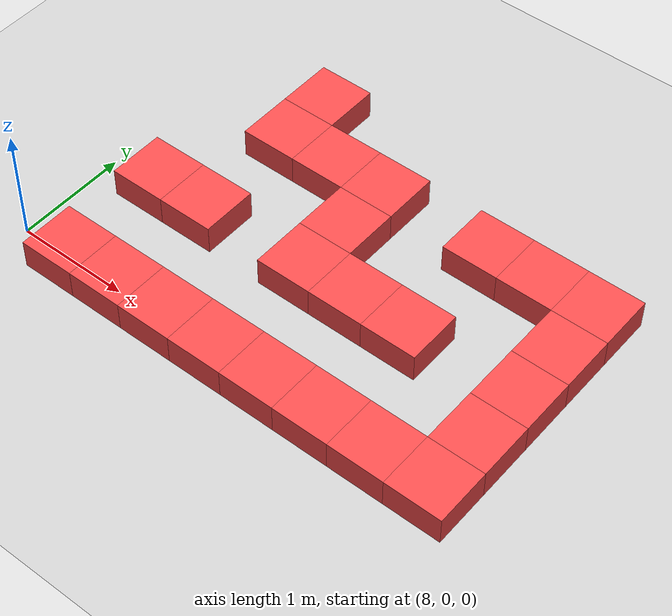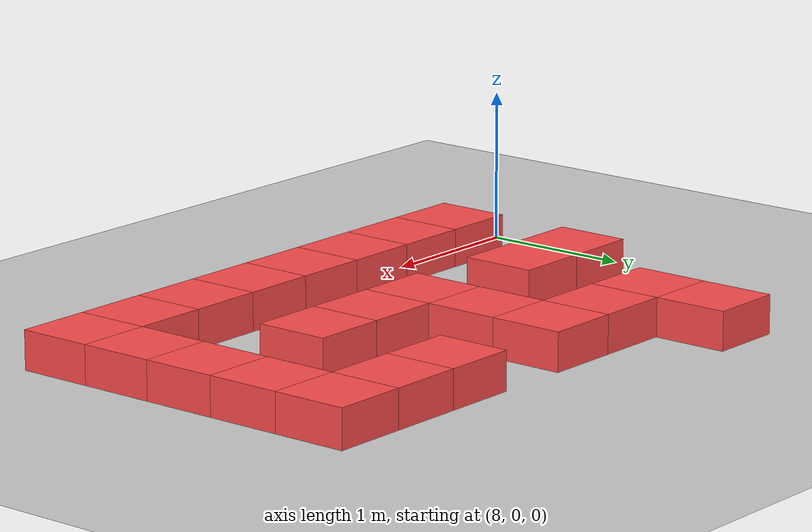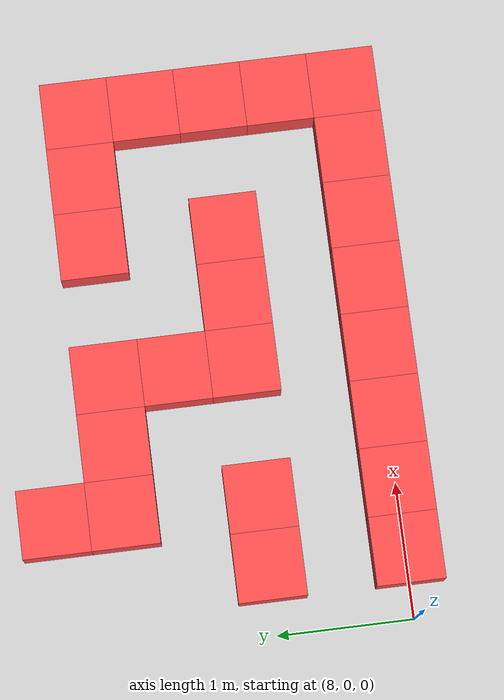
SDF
<sdf version="1.6">
 <world name="default">
  <model name="ground_plane">
   <static>1</static>
   <link name="link">
    <collision name="collision">
     <geometry><plane><normal>0 0 1</normal><size>100 100</size></plane></geometry>
     <surface><friction><ode><mu>100</mu><mu2>50</mu2></ode></friction></surface>
    </collision>
    <visual name="visual">
     <cast_shadows>0</cast_shadows>
     <geometry><plane><normal>0 0 1</normal><size>100 100</size></plane></geometry>
     <material>
      <script><uri>file://media/materials/scripts/gazebo.material</uri><name>Gazebo/Grey</name></script>
     </material>
    </visual>
   </link>
  </model>
  <model name="Box_Red_425">
   <link name="link_0">
    <inertial>
     <mass>1</mass>
     <inertia>
      <ixx>0.166667</ixx>
      <ixy>0</ixy>
      <ixz>0</ixz>
      <iyy>0.166667</iyy>
      <iyz>0</iyz>
      <izz>0.166667</izz>
     </inertia>
    </inertial>
    <visual name="visual">
     <geometry><box><size>0.5 0.5 0.5</size></box></geometry>
     <material>
      <lighting>1</lighting>
      <script><uri>file://media/materials/scripts/gazebo.material</uri><name>Gazebo/Grey</name></script>
      <ambient>1 0.3 0.3 1</ambient>
      <diffuse>0.7 0.7 0.7 1</diffuse>
      <specular>0.01 0.01 0.01 1</specular>
      <emissive>0 0 0 1</emissive>
      <shader type="vertex"><normal_map>__default__</normal_map></shader>
     </material>
    </visual>
    <collision name="collision">
     <geometry><box><size>0.5 0.5 0.5</size></box></geometry>
     <surface>
      <friction>
       <ode><mu>1</mu><mu2>1</mu2><fdir1>0 0 0</fdir1><slip1>0</slip1><slip2>0</slip2></ode>
       <torsional>
        <coefficient>1</coefficient>
        <patch_radius>0</patch_radius>
        <surface_radius>0</surface_radius>
        <use_patch_radius>1</use_patch_radius>
        <ode><slip>0</slip></ode>
       </torsional>
      </friction>
      <bounce><restitution_coefficient>0</restitution_coefficient><threshold>1e+06</threshold></bounce>
      <contact>
       <collide_without_contact>0</collide_without_contact>
       <collide_without_contact_bitmask>1</collide_without_contact_bitmask>
       <collide_bitmask>1</collide_bitmask>
       <ode>
        <soft_cfm>0</soft_cfm>
        <soft_erp>0.2</soft_erp>
        <kp>1e+13</kp>
        <kd>1</kd>
        <max_vel>0.01</max_vel>
        <min_depth>0</min_depth>
       </ode>
       <bullet>
        <split_impulse>1</split_impulse>
        <split_impulse_penetration_threshold>-0.01</split_impulse_penetration_threshold>
        <soft_cfm>0</soft_cfm>
        <soft_erp>0.2</soft_erp>
        <kp>1e+13</kp>
        <kd>1</kd>
       </bullet>
      </contact>
     </surface>
    </collision>
   </link>
   <static>0</static>
   <pose>8.500 0.000 0.000 0 0 0</pose>
  </model>
  <model name="Box_Red_427">
   <link name="link_0">
    <inertial>
     <mass>1</mass>
     <inertia>
      <ixx>0.166667</ixx>
      <ixy>0</ixy>
      <ixz>0</ixz>
      <iyy>0.166667</iyy>
      <iyz>0</iyz>
      <izz>0.166667</izz>
     </inertia>
    </inertial>
    <visual name="visual">
     <geometry><box><size>0.5 0.5 0.5</size></box></geometry>
     <material>
      <lighting>1</lighting>
      <script><uri>file://media/materials/scripts/gazebo.material</uri><name>Gazebo/Grey</name></script>
      <ambient>1 0.3 0.3 1</ambient>
      <diffuse>0.7 0.7 0.7 1</diffuse>
      <specular>0.01 0.01 0.01 1</specular>
      <emissive>0 0 0 1</emissive>
      <shader type="vertex"><normal_map>__default__</normal_map></shader>
     </material>
    </visual>
    <collision name="collision">
     <geometry><box><size>0.5 0.5 0.5</size></box></geometry>
     <surface>
      <friction>
       <ode><mu>1</mu><mu2>1</mu2><fdir1>0 0 0</fdir1><slip1>0</slip1><slip2>0</slip2></ode>
       <torsional>
        <coefficient>1</coefficient>
        <patch_radius>0</patch_radius>
        <surface_radius>0</surface_radius>
        <use_patch_radius>1</use_patch_radius>
        <ode><slip>0</slip></ode>
       </torsional>
      </friction>
      <bounce><restitution_coefficient>0</restitution_coefficient><threshold>1e+06</threshold></bounce>
      <contact>
       <collide_without_contact>0</collide_without_contact>
       <collide_without_contact_bitmask>1</collide_without_contact_bitmask>
       <collide_bitmask>1</collide_bitmask>
       <ode>
        <soft_cfm>0</soft_cfm>
        <soft_erp>0.2</soft_erp>
        <kp>1e+13</kp>
        <kd>1</kd>
        <max_vel>0.01</max_vel>
        <min_depth>0</min_depth>
       </ode>
       <bullet>
        <split_impulse>1</split_impulse>
        <split_impulse_penetration_threshold>-0.01</split_impulse_penetration_threshold>
        <soft_cfm>0</soft_cfm>
        <soft_erp>0.2</soft_erp>
        <kp>1e+13</kp>
        <kd>1</kd>
       </bullet>
      </contact>
     </surface>
    </collision>
   </link>
   <static>0</static>
   <pose>8.500 1.000 0.000 0 0 0</pose>
  </model>
  <model name="Box_Red_450">
   <link name="link_0">
    <inertial>
     <mass>1</mass>
     <inertia>
      <ixx>0.166667</ixx>
      <ixy>0</ixy>
      <ixz>0</ixz>
      <iyy>0.166667</iyy>
      <iyz>0</iyz>
      <izz>0.166667</izz>
     </inertia>
    </inertial>
    <visual name="visual">
     <geometry><box><size>0.5 0.5 0.5</size></box></geometry>
     <material>
      <lighting>1</lighting>
      <script><uri>file://media/materials/scripts/gazebo.material</uri><name>Gazebo/Grey</name></script>
      <ambient>1 0.3 0.3 1</ambient>
      <diffuse>0.7 0.7 0.7 1</diffuse>
      <specular>0.01 0.01 0.01 1</specular>
      <emissive>0 0 0 1</emissive>
      <shader type="vertex"><normal_map>__default__</normal_map></shader>
     </material>
    </visual>
    <collision name="collision">
     <geometry><box><size>0.5 0.5 0.5</size></box></geometry>
     <surface>
      <friction>
       <ode><mu>1</mu><mu2>1</mu2><fdir1>0 0 0</fdir1><slip1>0</slip1><slip2>0</slip2></ode>
       <torsional>
        <coefficient>1</coefficient>
        <patch_radius>0</patch_radius>
        <surface_radius>0</surface_radius>
        <use_patch_radius>1</use_patch_radius>
        <ode><slip>0</slip></ode>
       </torsional>
      </friction>
      <bounce><restitution_coefficient>0</restitution_coefficient><threshold>1e+06</threshold></bounce>
      <contact>
       <collide_without_contact>0</collide_without_contact>
       <collide_without_contact_bitmask>1</collide_without_contact_bitmask>
       <collide_bitmask>1</collide_bitmask>
       <ode>
        <soft_cfm>0</soft_cfm>
        <soft_erp>0.2</soft_erp>
        <kp>1e+13</kp>
        <kd>1</kd>
        <max_vel>0.01</max_vel>
        <min_depth>0</min_depth>
       </ode>
       <bullet>
        <split_impulse>1</split_impulse>
        <split_impulse_penetration_threshold>-0.01</split_impulse_penetration_threshold>
        <soft_cfm>0</soft_cfm>
        <soft_erp>0.2</soft_erp>
        <kp>1e+13</kp>
        <kd>1</kd>
       </bullet>
      </contact>
     </surface>
    </collision>
   </link>
   <static>0</static>
   <pose>9.000 0.000 0.000 0 0 0</pose>
  </model>
  <model name="Box_Red_452">
   <link name="link_0">
    <inertial>
     <mass>1</mass>
     <inertia>
      <ixx>0.166667</ixx>
      <ixy>0</ixy>
      <ixz>0</ixz>
      <iyy>0.166667</iyy>
      <iyz>0</iyz>
      <izz>0.166667</izz>
     </inertia>
    </inertial>
    <visual name="visual">
     <geometry><box><size>0.5 0.5 0.5</size></box></geometry>
     <material>
      <lighting>1</lighting>
      <script><uri>file://media/materials/scripts/gazebo.material</uri><name>Gazebo/Grey</name></script>
      <ambient>1 0.3 0.3 1</ambient>
      <diffuse>0.7 0.7 0.7 1</diffuse>
      <specular>0.01 0.01 0.01 1</specular>
      <emissive>0 0 0 1</emissive>
      <shader type="vertex"><normal_map>__default__</normal_map></shader>
     </material>
    </visual>
    <collision name="collision">
     <geometry><box><size>0.5 0.5 0.5</size></box></geometry>
     <surface>
      <friction>
       <ode><mu>1</mu><mu2>1</mu2><fdir1>0 0 0</fdir1><slip1>0</slip1><slip2>0</slip2></ode>
       <torsional>
        <coefficient>1</coefficient>
        <patch_radius>0</patch_radius>
        <surface_radius>0</surface_radius>
        <use_patch_radius>1</use_patch_radius>
        <ode><slip>0</slip></ode>
       </torsional>
      </friction>
      <bounce><restitution_coefficient>0</restitution_coefficient><threshold>1e+06</threshold></bounce>
      <contact>
       <collide_without_contact>0</collide_without_contact>
       <collide_without_contact_bitmask>1</collide_without_contact_bitmask>
       <collide_bitmask>1</collide_bitmask>
       <ode>
        <soft_cfm>0</soft_cfm>
        <soft_erp>0.2</soft_erp>
        <kp>1e+13</kp>
        <kd>1</kd>
        <max_vel>0.01</max_vel>
        <min_depth>0</min_depth>
       </ode>
       <bullet>
        <split_impulse>1</split_impulse>
        <split_impulse_penetration_threshold>-0.01</split_impulse_penetration_threshold>
        <soft_cfm>0</soft_cfm>
        <soft_erp>0.2</soft_erp>
        <kp>1e+13</kp>
        <kd>1</kd>
       </bullet>
      </contact>
     </surface>
    </collision>
   </link>
   <static>0</static>
   <pose>9.000 1.000 0.000 0 0 0</pose>
  </model>
  <model name="Box_Red_454">
   <link name="link_0">
    <inertial>
     <mass>1</mass>
     <inertia>
      <ixx>0.166667</ixx>
      <ixy>0</ixy>
      <ixz>0</ixz>
      <iyy>0.166667</iyy>
      <iyz>0</iyz>
      <izz>0.166667</izz>
     </inertia>
    </inertial>
    <visual name="visual">
     <geometry><box><size>0.5 0.5 0.5</size></box></geometry>
     <material>
      <lighting>1</lighting>
      <script><uri>file://media/materials/scripts/gazebo.material</uri><name>Gazebo/Grey</name></script>
      <ambient>1 0.3 0.3 1</ambient>
      <diffuse>0.7 0.7 0.7 1</diffuse>
      <specular>0.01 0.01 0.01 1</specular>
      <emissive>0 0 0 1</emissive>
      <shader type="vertex"><normal_map>__default__</normal_map></shader>
     </material>
    </visual>
    <collision name="collision">
     <geometry><box><size>0.5 0.5 0.5</size></box></geometry>
     <surface>
      <friction>
       <ode><mu>1</mu><mu2>1</mu2><fdir1>0 0 0</fdir1><slip1>0</slip1><slip2>0</slip2></ode>
       <torsional>
        <coefficient>1</coefficient>
        <patch_radius>0</patch_radius>
        <surface_radius>0</surface_radius>
        <use_patch_radius>1</use_patch_radius>
        <ode><slip>0</slip></ode>
       </torsional>
      </friction>
      <bounce><restitution_coefficient>0</restitution_coefficient><threshold>1e+06</threshold></bounce>
      <contact>
       <collide_without_contact>0</collide_without_contact>
       <collide_without_contact_bitmask>1</collide_without_contact_bitmask>
       <collide_bitmask>1</collide_bitmask>
       <ode>
        <soft_cfm>0</soft_cfm>
        <soft_erp>0.2</soft_erp>
        <kp>1e+13</kp>
        <kd>1</kd>
        <max_vel>0.01</max_vel>
        <min_depth>0</min_depth>
       </ode>
       <bullet>
        <split_impulse>1</split_impulse>
        <split_impulse_penetration_threshold>-0.01</split_impulse_penetration_threshold>
        <soft_cfm>0</soft_cfm>
        <soft_erp>0.2</soft_erp>
        <kp>1e+13</kp>
        <kd>1</kd>
       </bullet>
      </contact>
     </surface>
    </collision>
   </link>
   <static>0</static>
   <pose>9.000 2.000 0.000 0 0 0</pose>
  </model>
  <model name="Box_Red_455">
   <link name="link_0">
    <inertial>
     <mass>1</mass>
     <inertia>
      <ixx>0.166667</ixx>
      <ixy>0</ixy>
      <ixz>0</ixz>
      <iyy>0.166667</iyy>
      <iyz>0</iyz>
      <izz>0.166667</izz>
     </inertia>
    </inertial>
    <visual name="visual">
     <geometry><box><size>0.5 0.5 0.5</size></box></geometry>
     <material>
      <lighting>1</lighting>
      <script><uri>file://media/materials/scripts/gazebo.material</uri><name>Gazebo/Grey</name></script>
      <ambient>1 0.3 0.3 1</ambient>
      <diffuse>0.7 0.7 0.7 1</diffuse>
      <specular>0.01 0.01 0.01 1</specular>
      <emissive>0 0 0 1</emissive>
      <shader type="vertex"><normal_map>__default__</normal_map></shader>
     </material>
    </visual>
    <collision name="collision">
     <geometry><box><size>0.5 0.5 0.5</size></box></geometry>
     <surface>
      <friction>
       <ode><mu>1</mu><mu2>1</mu2><fdir1>0 0 0</fdir1><slip1>0</slip1><slip2>0</slip2></ode>
       <torsional>
        <coefficient>1</coefficient>
        <patch_radius>0</patch_radius>
        <surface_radius>0</surface_radius>
        <use_patch_radius>1</use_patch_radius>
        <ode><slip>0</slip></ode>
       </torsional>
      </friction>
      <bounce><restitution_coefficient>0</restitution_coefficient><threshold>1e+06</threshold></bounce>
      <contact>
       <collide_without_contact>0</collide_without_contact>
       <collide_without_contact_bitmask>1</collide_without_contact_bitmask>
       <collide_bitmask>1</collide_bitmask>
       <ode>
        <soft_cfm>0</soft_cfm>
        <soft_erp>0.2</soft_erp>
        <kp>1e+13</kp>
        <kd>1</kd>
        <max_vel>0.01</max_vel>
        <min_depth>0</min_depth>
       </ode>
       <bullet>
        <split_impulse>1</split_impulse>
        <split_impulse_penetration_threshold>-0.01</split_impulse_penetration_threshold>
        <soft_cfm>0</soft_cfm>
        <soft_erp>0.2</soft_erp>
        <kp>1e+13</kp>
        <kd>1</kd>
       </bullet>
      </contact>
     </surface>
    </collision>
   </link>
   <static>0</static>
   <pose>9.000 2.500 0.000 0 0 0</pose>
  </model>
  <model name="Box_Red_475">
   <link name="link_0">
    <inertial>
     <mass>1</mass>
     <inertia>
      <ixx>0.166667</ixx>
      <ixy>0</ixy>
      <ixz>0</ixz>
      <iyy>0.166667</iyy>
      <iyz>0</iyz>
      <izz>0.166667</izz>
     </inertia>
    </inertial>
    <visual name="visual">
     <geometry><box><size>0.5 0.5 0.5</size></box></geometry>
     <material>
      <lighting>1</lighting>
      <script><uri>file://media/materials/scripts/gazebo.material</uri><name>Gazebo/Grey</name></script>
      <ambient>1 0.3 0.3 1</ambient>
      <diffuse>0.7 0.7 0.7 1</diffuse>
      <specular>0.01 0.01 0.01 1</specular>
      <emissive>0 0 0 1</emissive>
      <shader type="vertex"><normal_map>__default__</normal_map></shader>
     </material>
    </visual>
    <collision name="collision">
     <geometry><box><size>0.5 0.5 0.5</size></box></geometry>
     <surface>
      <friction>
       <ode><mu>1</mu><mu2>1</mu2><fdir1>0 0 0</fdir1><slip1>0</slip1><slip2>0</slip2></ode>
       <torsional>
        <coefficient>1</coefficient>
        <patch_radius>0</patch_radius>
        <surface_radius>0</surface_radius>
        <use_patch_radius>1</use_patch_radius>
        <ode><slip>0</slip></ode>
       </torsional>
      </friction>
      <bounce><restitution_coefficient>0</restitution_coefficient><threshold>1e+06</threshold></bounce>
      <contact>
       <collide_without_contact>0</collide_without_contact>
       <collide_without_contact_bitmask>1</collide_without_contact_bitmask>
       <collide_bitmask>1</collide_bitmask>
       <ode>
        <soft_cfm>0</soft_cfm>
        <soft_erp>0.2</soft_erp>
        <kp>1e+13</kp>
        <kd>1</kd>
        <max_vel>0.01</max_vel>
        <min_depth>0</min_depth>
       </ode>
       <bullet>
        <split_impulse>1</split_impulse>
        <split_impulse_penetration_threshold>-0.01</split_impulse_penetration_threshold>
        <soft_cfm>0</soft_cfm>
        <soft_erp>0.2</soft_erp>
        <kp>1e+13</kp>
        <kd>1</kd>
       </bullet>
      </contact>
     </surface>
    </collision>
   </link>
   <static>0</static>
   <pose>9.500 0.000 0.000 0 0 0</pose>
  </model>
  <model name="Box_Red_479">
   <link name="link_0">
    <inertial>
     <mass>1</mass>
     <inertia>
      <ixx>0.166667</ixx>
      <ixy>0</ixy>
      <ixz>0</ixz>
      <iyy>0.166667</iyy>
      <iyz>0</iyz>
      <izz>0.166667</izz>
     </inertia>
    </inertial>
    <visual name="visual">
     <geometry><box><size>0.5 0.5 0.5</size></box></geometry>
     <material>
      <lighting>1</lighting>
      <script><uri>file://media/materials/scripts/gazebo.material</uri><name>Gazebo/Grey</name></script>
      <ambient>1 0.3 0.3 1</ambient>
      <diffuse>0.7 0.7 0.7 1</diffuse>
      <specular>0.01 0.01 0.01 1</specular>
      <emissive>0 0 0 1</emissive>
      <shader type="vertex"><normal_map>__default__</normal_map></shader>
     </material>
    </visual>
    <collision name="collision">
     <geometry><box><size>0.5 0.5 0.5</size></box></geometry>
     <surface>
      <friction>
       <ode><mu>1</mu><mu2>1</mu2><fdir1>0 0 0</fdir1><slip1>0</slip1><slip2>0</slip2></ode>
       <torsional>
        <coefficient>1</coefficient>
        <patch_radius>0</patch_radius>
        <surface_radius>0</surface_radius>
        <use_patch_radius>1</use_patch_radius>
        <ode><slip>0</slip></ode>
       </torsional>
      </friction>
      <bounce><restitution_coefficient>0</restitution_coefficient><threshold>1e+06</threshold></bounce>
      <contact>
       <collide_without_contact>0</collide_without_contact>
       <collide_without_contact_bitmask>1</collide_without_contact_bitmask>
       <collide_bitmask>1</collide_bitmask>
       <ode>
        <soft_cfm>0</soft_cfm>
        <soft_erp>0.2</soft_erp>
        <kp>1e+13</kp>
        <kd>1</kd>
        <max_vel>0.01</max_vel>
        <min_depth>0</min_depth>
       </ode>
       <bullet>
        <split_impulse>1</split_impulse>
        <split_impulse_penetration_threshold>-0.01</split_impulse_penetration_threshold>
        <soft_cfm>0</soft_cfm>
        <soft_erp>0.2</soft_erp>
        <kp>1e+13</kp>
        <kd>1</kd>
       </bullet>
      </contact>
     </surface>
    </collision>
   </link>
   <static>0</static>
   <pose>9.500 2.000 0.000 0 0 0</pose>
  </model>
  <model name="Box_Red_500">
   <link name="link_0">
    <inertial>
     <mass>1</mass>
     <inertia>
      <ixx>0.166667</ixx>
      <ixy>0</ixy>
      <ixz>0</ixz>
      <iyy>0.166667</iyy>
      <iyz>0</iyz>
      <izz>0.166667</izz>
     </inertia>
    </inertial>
    <visual name="visual">
     <geometry><box><size>0.5 0.5 0.5</size></box></geometry>
     <material>
      <lighting>1</lighting>
      <script><uri>file://media/materials/scripts/gazebo.material</uri><name>Gazebo/Grey</name></script>
      <ambient>1 0.3 0.3 1</ambient>
      <diffuse>0.7 0.7 0.7 1</diffuse>
      <specular>0.01 0.01 0.01 1</specular>
      <emissive>0 0 0 1</emissive>
      <shader type="vertex"><normal_map>__default__</normal_map></shader>
     </material>
    </visual>
    <collision name="collision">
     <geometry><box><size>0.5 0.5 0.5</size></box></geometry>
     <surface>
      <friction>
       <ode><mu>1</mu><mu2>1</mu2><fdir1>0 0 0</fdir1><slip1>0</slip1><slip2>0</slip2></ode>
       <torsional>
        <coefficient>1</coefficient>
        <patch_radius>0</patch_radius>
        <surface_radius>0</surface_radius>
        <use_patch_radius>1</use_patch_radius>
        <ode><slip>0</slip></ode>
       </torsional>
      </friction>
      <bounce><restitution_coefficient>0</restitution_coefficient><threshold>1e+06</threshold></bounce>
      <contact>
       <collide_without_contact>0</collide_without_contact>
       <collide_without_contact_bitmask>1</collide_without_contact_bitmask>
       <collide_bitmask>1</collide_bitmask>
       <ode>
        <soft_cfm>0</soft_cfm>
        <soft_erp>0.2</soft_erp>
        <kp>1e+13</kp>
        <kd>1</kd>
        <max_vel>0.01</max_vel>
        <min_depth>0</min_depth>
       </ode>
       <bullet>
        <split_impulse>1</split_impulse>
        <split_impulse_penetration_threshold>-0.01</split_impulse_penetration_threshold>
        <soft_cfm>0</soft_cfm>
        <soft_erp>0.2</soft_erp>
        <kp>1e+13</kp>
        <kd>1</kd>
       </bullet>
      </contact>
     </surface>
    </collision>
   </link>
   <static>0</static>
   <pose>10.000 0.000 0.000 0 0 0</pose>
  </model>
  <model name="Box_Red_502">
   <link name="link_0">
    <inertial>
     <mass>1</mass>
     <inertia>
      <ixx>0.166667</ixx>
      <ixy>0</ixy>
      <ixz>0</ixz>
      <iyy>0.166667</iyy>
      <iyz>0</iyz>
      <izz>0.166667</izz>
     </inertia>
    </inertial>
    <visual name="visual">
     <geometry><box><size>0.5 0.5 0.5</size></box></geometry>
     <material>
      <lighting>1</lighting>
      <script><uri>file://media/materials/scripts/gazebo.material</uri><name>Gazebo/Grey</name></script>
      <ambient>1 0.3 0.3 1</ambient>
      <diffuse>0.7 0.7 0.7 1</diffuse>
      <specular>0.01 0.01 0.01 1</specular>
      <emissive>0 0 0 1</emissive>
      <shader type="vertex"><normal_map>__default__</normal_map></shader>
     </material>
    </visual>
    <collision name="collision">
     <geometry><box><size>0.5 0.5 0.5</size></box></geometry>
     <surface>
      <friction>
       <ode><mu>1</mu><mu2>1</mu2><fdir1>0 0 0</fdir1><slip1>0</slip1><slip2>0</slip2></ode>
       <torsional>
        <coefficient>1</coefficient>
        <patch_radius>0</patch_radius>
        <surface_radius>0</surface_radius>
        <use_patch_radius>1</use_patch_radius>
        <ode><slip>0</slip></ode>
       </torsional>
      </friction>
      <bounce><restitution_coefficient>0</restitution_coefficient><threshold>1e+06</threshold></bounce>
      <contact>
       <collide_without_contact>0</collide_without_contact>
       <collide_without_contact_bitmask>1</collide_without_contact_bitmask>
       <collide_bitmask>1</collide_bitmask>
       <ode>
        <soft_cfm>0</soft_cfm>
        <soft_erp>0.2</soft_erp>
        <kp>1e+13</kp>
        <kd>1</kd>
        <max_vel>0.01</max_vel>
        <min_depth>0</min_depth>
       </ode>
       <bullet>
        <split_impulse>1</split_impulse>
        <split_impulse_penetration_threshold>-0.01</split_impulse_penetration_threshold>
        <soft_cfm>0</soft_cfm>
        <soft_erp>0.2</soft_erp>
        <kp>1e+13</kp>
        <kd>1</kd>
       </bullet>
      </contact>
     </surface>
    </collision>
   </link>
   <static>0</static>
   <pose>10.000 1.000 0.000 0 0 0</pose>
  </model>
  <model name="Box_Red_503">
   <link name="link_0">
    <inertial>
     <mass>1</mass>
     <inertia>
      <ixx>0.166667</ixx>
      <ixy>0</ixy>
      <ixz>0</ixz>
      <iyy>0.166667</iyy>
      <iyz>0</iyz>
      <izz>0.166667</izz>
     </inertia>
    </inertial>
    <visual name="visual">
     <geometry><box><size>0.5 0.5 0.5</size></box></geometry>
     <material>
      <lighting>1</lighting>
      <script><uri>file://media/materials/scripts/gazebo.material</uri><name>Gazebo/Grey</name></script>
      <ambient>1 0.3 0.3 1</ambient>
      <diffuse>0.7 0.7 0.7 1</diffuse>
      <specular>0.01 0.01 0.01 1</specular>
      <emissive>0 0 0 1</emissive>
      <shader type="vertex"><normal_map>__default__</normal_map></shader>
     </material>
    </visual>
    <collision name="collision">
     <geometry><box><size>0.5 0.5 0.5</size></box></geometry>
     <surface>
      <friction>
       <ode><mu>1</mu><mu2>1</mu2><fdir1>0 0 0</fdir1><slip1>0</slip1><slip2>0</slip2></ode>
       <torsional>
        <coefficient>1</coefficient>
        <patch_radius>0</patch_radius>
        <surface_radius>0</surface_radius>
        <use_patch_radius>1</use_patch_radius>
        <ode><slip>0</slip></ode>
       </torsional>
      </friction>
      <bounce><restitution_coefficient>0</restitution_coefficient><threshold>1e+06</threshold></bounce>
      <contact>
       <collide_without_contact>0</collide_without_contact>
       <collide_without_contact_bitmask>1</collide_without_contact_bitmask>
       <collide_bitmask>1</collide_bitmask>
       <ode>
        <soft_cfm>0</soft_cfm>
        <soft_erp>0.2</soft_erp>
        <kp>1e+13</kp>
        <kd>1</kd>
        <max_vel>0.01</max_vel>
        <min_depth>0</min_depth>
       </ode>
       <bullet>
        <split_impulse>1</split_impulse>
        <split_impulse_penetration_threshold>-0.01</split_impulse_penetration_threshold>
        <soft_cfm>0</soft_cfm>
        <soft_erp>0.2</soft_erp>
        <kp>1e+13</kp>
        <kd>1</kd>
       </bullet>
      </contact>
     </surface>
    </collision>
   </link>
   <static>0</static>
   <pose>10.000 1.500 0.000 0 0 0</pose>
  </model>
  <model name="Box_Red_504">
   <link name="link_0">
    <inertial>
     <mass>1</mass>
     <inertia>
      <ixx>0.166667</ixx>
      <ixy>0</ixy>
      <ixz>0</ixz>
      <iyy>0.166667</iyy>
      <iyz>0</iyz>
      <izz>0.166667</izz>
     </inertia>
    </inertial>
    <visual name="visual">
     <geometry><box><size>0.5 0.5 0.5</size></box></geometry>
     <material>
      <lighting>1</lighting>
      <script><uri>file://media/materials/scripts/gazebo.material</uri><name>Gazebo/Grey</name></script>
      <ambient>1 0.3 0.3 1</ambient>
      <diffuse>0.7 0.7 0.7 1</diffuse>
      <specular>0.01 0.01 0.01 1</specular>
      <emissive>0 0 0 1</emissive>
      <shader type="vertex"><normal_map>__default__</normal_map></shader>
     </material>
    </visual>
    <collision name="collision">
     <geometry><box><size>0.5 0.5 0.5</size></box></geometry>
     <surface>
      <friction>
       <ode><mu>1</mu><mu2>1</mu2><fdir1>0 0 0</fdir1><slip1>0</slip1><slip2>0</slip2></ode>
       <torsional>
        <coefficient>1</coefficient>
        <patch_radius>0</patch_radius>
        <surface_radius>0</surface_radius>
        <use_patch_radius>1</use_patch_radius>
        <ode><slip>0</slip></ode>
       </torsional>
      </friction>
      <bounce><restitution_coefficient>0</restitution_coefficient><threshold>1e+06</threshold></bounce>
      <contact>
       <collide_without_contact>0</collide_without_contact>
       <collide_without_contact_bitmask>1</collide_without_contact_bitmask>
       <collide_bitmask>1</collide_bitmask>
       <ode>
        <soft_cfm>0</soft_cfm>
        <soft_erp>0.2</soft_erp>
        <kp>1e+13</kp>
        <kd>1</kd>
        <max_vel>0.01</max_vel>
        <min_depth>0</min_depth>
       </ode>
       <bullet>
        <split_impulse>1</split_impulse>
        <split_impulse_penetration_threshold>-0.01</split_impulse_penetration_threshold>
        <soft_cfm>0</soft_cfm>
        <soft_erp>0.2</soft_erp>
        <kp>1e+13</kp>
        <kd>1</kd>
       </bullet>
      </contact>
     </surface>
    </collision>
   </link>
   <static>0</static>
   <pose>10.000 2.000 0.000 0 0 0</pose>
  </model>
  <model name="Box_Red_525">
   <link name="link_0">
    <inertial>
     <mass>1</mass>
     <inertia>
      <ixx>0.166667</ixx>
      <ixy>0</ixy>
      <ixz>0</ixz>
      <iyy>0.166667</iyy>
      <iyz>0</iyz>
      <izz>0.166667</izz>
     </inertia>
    </inertial>
    <visual name="visual">
     <geometry><box><size>0.5 0.5 0.5</size></box></geometry>
     <material>
      <lighting>1</lighting>
      <script><uri>file://media/materials/scripts/gazebo.material</uri><name>Gazebo/Grey</name></script>
      <ambient>1 0.3 0.3 1</ambient>
      <diffuse>0.7 0.7 0.7 1</diffuse>
      <specular>0.01 0.01 0.01 1</specular>
      <emissive>0 0 0 1</emissive>
      <shader type="vertex"><normal_map>__default__</normal_map></shader>
     </material>
    </visual>
    <collision name="collision">
     <geometry><box><size>0.5 0.5 0.5</size></box></geometry>
     <surface>
      <friction>
       <ode><mu>1</mu><mu2>1</mu2><fdir1>0 0 0</fdir1><slip1>0</slip1><slip2>0</slip2></ode>
       <torsional>
        <coefficient>1</coefficient>
        <patch_radius>0</patch_radius>
        <surface_radius>0</surface_radius>
        <use_patch_radius>1</use_patch_radius>
        <ode><slip>0</slip></ode>
       </torsional>
      </friction>
      <bounce><restitution_coefficient>0</restitution_coefficient><threshold>1e+06</threshold></bounce>
      <contact>
       <collide_without_contact>0</collide_without_contact>
       <collide_without_contact_bitmask>1</collide_without_contact_bitmask>
       <collide_bitmask>1</collide_bitmask>
       <ode>
        <soft_cfm>0</soft_cfm>
        <soft_erp>0.2</soft_erp>
        <kp>1e+13</kp>
        <kd>1</kd>
        <max_vel>0.01</max_vel>
        <min_depth>0</min_depth>
       </ode>
       <bullet>
        <split_impulse>1</split_impulse>
        <split_impulse_penetration_threshold>-0.01</split_impulse_penetration_threshold>
        <soft_cfm>0</soft_cfm>
        <soft_erp>0.2</soft_erp>
        <kp>1e+13</kp>
        <kd>1</kd>
       </bullet>
      </contact>
     </surface>
    </collision>
   </link>
   <static>0</static>
   <pose>10.500 0.000 0.000 0 0 0</pose>
  </model>
  <model name="Box_Red_527">
   <link name="link_0">
    <inertial>
     <mass>1</mass>
     <inertia>
      <ixx>0.166667</ixx>
      <ixy>0</ixy>
      <ixz>0</ixz>
      <iyy>0.166667</iyy>
      <iyz>0</iyz>
      <izz>0.166667</izz>
     </inertia>
    </inertial>
    <visual name="visual">
     <geometry><box><size>0.5 0.5 0.5</size></box></geometry>
     <material>
      <lighting>1</lighting>
      <script><uri>file://media/materials/scripts/gazebo.material</uri><name>Gazebo/Grey</name></script>
      <ambient>1 0.3 0.3 1</ambient>
      <diffuse>0.7 0.7 0.7 1</diffuse>
      <specular>0.01 0.01 0.01 1</specular>
      <emissive>0 0 0 1</emissive>
      <shader type="vertex"><normal_map>__default__</normal_map></shader>
     </material>
    </visual>
    <collision name="collision">
     <geometry><box><size>0.5 0.5 0.5</size></box></geometry>
     <surface>
      <friction>
       <ode><mu>1</mu><mu2>1</mu2><fdir1>0 0 0</fdir1><slip1>0</slip1><slip2>0</slip2></ode>
       <torsional>
        <coefficient>1</coefficient>
        <patch_radius>0</patch_radius>
        <surface_radius>0</surface_radius>
        <use_patch_radius>1</use_patch_radius>
        <ode><slip>0</slip></ode>
       </torsional>
      </friction>
      <bounce><restitution_coefficient>0</restitution_coefficient><threshold>1e+06</threshold></bounce>
      <contact>
       <collide_without_contact>0</collide_without_contact>
       <collide_without_contact_bitmask>1</collide_without_contact_bitmask>
       <collide_bitmask>1</collide_bitmask>
       <ode>
        <soft_cfm>0</soft_cfm>
        <soft_erp>0.2</soft_erp>
        <kp>1e+13</kp>
        <kd>1</kd>
        <max_vel>0.01</max_vel>
        <min_depth>0</min_depth>
       </ode>
       <bullet>
        <split_impulse>1</split_impulse>
        <split_impulse_penetration_threshold>-0.01</split_impulse_penetration_threshold>
        <soft_cfm>0</soft_cfm>
        <soft_erp>0.2</soft_erp>
        <kp>1e+13</kp>
        <kd>1</kd>
       </bullet>
      </contact>
     </surface>
    </collision>
   </link>
   <static>0</static>
   <pose>10.500 1.000 0.000 0 0 0</pose>
  </model>
  <model name="Box_Red_550">
   <link name="link_0">
    <inertial>
     <mass>1</mass>
     <inertia>
      <ixx>0.166667</ixx>
      <ixy>0</ixy>
      <ixz>0</ixz>
      <iyy>0.166667</iyy>
      <iyz>0</iyz>
      <izz>0.166667</izz>
     </inertia>
    </inertial>
    <visual name="visual">
     <geometry><box><size>0.5 0.5 0.5</size></box></geometry>
     <material>
      <lighting>1</lighting>
      <script><uri>file://media/materials/scripts/gazebo.material</uri><name>Gazebo/Grey</name></script>
      <ambient>1 0.3 0.3 1</ambient>
      <diffuse>0.7 0.7 0.7 1</diffuse>
      <specular>0.01 0.01 0.01 1</specular>
      <emissive>0 0 0 1</emissive>
      <shader type="vertex"><normal_map>__default__</normal_map></shader>
     </material>
    </visual>
    <collision name="collision">
     <geometry><box><size>0.5 0.5 0.5</size></box></geometry>
     <surface>
      <friction>
       <ode><mu>1</mu><mu2>1</mu2><fdir1>0 0 0</fdir1><slip1>0</slip1><slip2>0</slip2></ode>
       <torsional>
        <coefficient>1</coefficient>
        <patch_radius>0</patch_radius>
        <surface_radius>0</surface_radius>
        <use_patch_radius>1</use_patch_radius>
        <ode><slip>0</slip></ode>
       </torsional>
      </friction>
      <bounce><restitution_coefficient>0</restitution_coefficient><threshold>1e+06</threshold></bounce>
      <contact>
       <collide_without_contact>0</collide_without_contact>
       <collide_without_contact_bitmask>1</collide_without_contact_bitmask>
       <collide_bitmask>1</collide_bitmask>
       <ode>
        <soft_cfm>0</soft_cfm>
        <soft_erp>0.2</soft_erp>
        <kp>1e+13</kp>
        <kd>1</kd>
        <max_vel>0.01</max_vel>
        <min_depth>0</min_depth>
       </ode>
       <bullet>
        <split_impulse>1</split_impulse>
        <split_impulse_penetration_threshold>-0.01</split_impulse_penetration_threshold>
        <soft_cfm>0</soft_cfm>
        <soft_erp>0.2</soft_erp>
        <kp>1e+13</kp>
        <kd>1</kd>
       </bullet>
      </contact>
     </surface>
    </collision>
   </link>
   <static>0</static>
   <pose>11.000 0.000 0.000 0 0 0</pose>
  </model>
  <model name="Box_Red_552">
   <link name="link_0">
    <inertial>
     <mass>1</mass>
     <inertia>
      <ixx>0.166667</ixx>
      <ixy>0</ixy>
      <ixz>0</ixz>
      <iyy>0.166667</iyy>
      <iyz>0</iyz>
      <izz>0.166667</izz>
     </inertia>
    </inertial>
    <visual name="visual">
     <geometry><box><size>0.5 0.5 0.5</size></box></geometry>
     <material>
      <lighting>1</lighting>
      <script><uri>file://media/materials/scripts/gazebo.material</uri><name>Gazebo/Grey</name></script>
      <ambient>1 0.3 0.3 1</ambient>
      <diffuse>0.7 0.7 0.7 1</diffuse>
      <specular>0.01 0.01 0.01 1</specular>
      <emissive>0 0 0 1</emissive>
      <shader type="vertex"><normal_map>__default__</normal_map></shader>
     </material>
    </visual>
    <collision name="collision">
     <geometry><box><size>0.5 0.5 0.5</size></box></geometry>
     <surface>
      <friction>
       <ode><mu>1</mu><mu2>1</mu2><fdir1>0 0 0</fdir1><slip1>0</slip1><slip2>0</slip2></ode>
       <torsional>
        <coefficient>1</coefficient>
        <patch_radius>0</patch_radius>
        <surface_radius>0</surface_radius>
        <use_patch_radius>1</use_patch_radius>
        <ode><slip>0</slip></ode>
       </torsional>
      </friction>
      <bounce><restitution_coefficient>0</restitution_coefficient><threshold>1e+06</threshold></bounce>
      <contact>
       <collide_without_contact>0</collide_without_contact>
       <collide_without_contact_bitmask>1</collide_without_contact_bitmask>
       <collide_bitmask>1</collide_bitmask>
       <ode>
        <soft_cfm>0</soft_cfm>
        <soft_erp>0.2</soft_erp>
        <kp>1e+13</kp>
        <kd>1</kd>
        <max_vel>0.01</max_vel>
        <min_depth>0</min_depth>
       </ode>
       <bullet>
        <split_impulse>1</split_impulse>
        <split_impulse_penetration_threshold>-0.01</split_impulse_penetration_threshold>
        <soft_cfm>0</soft_cfm>
        <soft_erp>0.2</soft_erp>
        <kp>1e+13</kp>
        <kd>1</kd>
       </bullet>
      </contact>
     </surface>
    </collision>
   </link>
   <static>0</static>
   <pose>11.000 1.000 0.000 0 0 0</pose>
  </model>
  <model name="Box_Red_554">
   <link name="link_0">
    <inertial>
     <mass>1</mass>
     <inertia>
      <ixx>0.166667</ixx>
      <ixy>0</ixy>
      <ixz>0</ixz>
      <iyy>0.166667</iyy>
      <iyz>0</iyz>
      <izz>0.166667</izz>
     </inertia>
    </inertial>
    <visual name="visual">
     <geometry><box><size>0.5 0.5 0.5</size></box></geometry>
     <material>
      <lighting>1</lighting>
      <script><uri>file://media/materials/scripts/gazebo.material</uri><name>Gazebo/Grey</name></script>
      <ambient>1 0.3 0.3 1</ambient>
      <diffuse>0.7 0.7 0.7 1</diffuse>
      <specular>0.01 0.01 0.01 1</specular>
      <emissive>0 0 0 1</emissive>
      <shader type="vertex"><normal_map>__default__</normal_map></shader>
     </material>
    </visual>
    <collision name="collision">
     <geometry><box><size>0.5 0.5 0.5</size></box></geometry>
     <surface>
      <friction>
       <ode><mu>1</mu><mu2>1</mu2><fdir1>0 0 0</fdir1><slip1>0</slip1><slip2>0</slip2></ode>
       <torsional>
        <coefficient>1</coefficient>
        <patch_radius>0</patch_radius>
        <surface_radius>0</surface_radius>
        <use_patch_radius>1</use_patch_radius>
        <ode><slip>0</slip></ode>
       </torsional>
      </friction>
      <bounce><restitution_coefficient>0</restitution_coefficient><threshold>1e+06</threshold></bounce>
      <contact>
       <collide_without_contact>0</collide_without_contact>
       <collide_without_contact_bitmask>1</collide_without_contact_bitmask>
       <collide_bitmask>1</collide_bitmask>
       <ode>
        <soft_cfm>0</soft_cfm>
        <soft_erp>0.2</soft_erp>
        <kp>1e+13</kp>
        <kd>1</kd>
        <max_vel>0.01</max_vel>
        <min_depth>0</min_depth>
       </ode>
       <bullet>
        <split_impulse>1</split_impulse>
        <split_impulse_penetration_threshold>-0.01</split_impulse_penetration_threshold>
        <soft_cfm>0</soft_cfm>
        <soft_erp>0.2</soft_erp>
        <kp>1e+13</kp>
        <kd>1</kd>
       </bullet>
      </contact>
     </surface>
    </collision>
   </link>
   <static>0</static>
   <pose>11.000 2.000 0.000 0 0 0</pose>
  </model>
  <model name="Box_Red_575">
   <link name="link_0">
    <inertial>
     <mass>1</mass>
     <inertia>
      <ixx>0.166667</ixx>
      <ixy>0</ixy>
      <ixz>0</ixz>
      <iyy>0.166667</iyy>
      <iyz>0</iyz>
      <izz>0.166667</izz>
     </inertia>
    </inertial>
    <visual name="visual">
     <geometry><box><size>0.5 0.5 0.5</size></box></geometry>
     <material>
      <lighting>1</lighting>
      <script><uri>file://media/materials/scripts/gazebo.material</uri><name>Gazebo/Grey</name></script>
      <ambient>1 0.3 0.3 1</ambient>
      <diffuse>0.7 0.7 0.7 1</diffuse>
      <specular>0.01 0.01 0.01 1</specular>
      <emissive>0 0 0 1</emissive>
      <shader type="vertex"><normal_map>__default__</normal_map></shader>
     </material>
    </visual>
    <collision name="collision">
     <geometry><box><size>0.5 0.5 0.5</size></box></geometry>
     <surface>
      <friction>
       <ode><mu>1</mu><mu2>1</mu2><fdir1>0 0 0</fdir1><slip1>0</slip1><slip2>0</slip2></ode>
       <torsional>
        <coefficient>1</coefficient>
        <patch_radius>0</patch_radius>
        <surface_radius>0</surface_radius>
        <use_patch_radius>1</use_patch_radius>
        <ode><slip>0</slip></ode>
       </torsional>
      </friction>
      <bounce><restitution_coefficient>0</restitution_coefficient><threshold>1e+06</threshold></bounce>
      <contact>
       <collide_without_contact>0</collide_without_contact>
       <collide_without_contact_bitmask>1</collide_without_contact_bitmask>
       <collide_bitmask>1</collide_bitmask>
       <ode>
        <soft_cfm>0</soft_cfm>
        <soft_erp>0.2</soft_erp>
        <kp>1e+13</kp>
        <kd>1</kd>
        <max_vel>0.01</max_vel>
        <min_depth>0</min_depth>
       </ode>
       <bullet>
        <split_impulse>1</split_impulse>
        <split_impulse_penetration_threshold>-0.01</split_impulse_penetration_threshold>
        <soft_cfm>0</soft_cfm>
        <soft_erp>0.2</soft_erp>
        <kp>1e+13</kp>
        <kd>1</kd>
       </bullet>
      </contact>
     </surface>
    </collision>
   </link>
   <static>0</static>
   <pose>11.500 0.000 0.000 0 0 0</pose>
  </model>
  <model name="Box_Red_579">
   <link name="link_0">
    <inertial>
     <mass>1</mass>
     <inertia>
      <ixx>0.166667</ixx>
      <ixy>0</ixy>
      <ixz>0</ixz>
      <iyy>0.166667</iyy>
      <iyz>0</iyz>
      <izz>0.166667</izz>
     </inertia>
    </inertial>
    <visual name="visual">
     <geometry><box><size>0.5 0.5 0.5</size></box></geometry>
     <material>
      <lighting>1</lighting>
      <script><uri>file://media/materials/scripts/gazebo.material</uri><name>Gazebo/Grey</name></script>
      <ambient>1 0.3 0.3 1</ambient>
      <diffuse>0.7 0.7 0.7 1</diffuse>
      <specular>0.01 0.01 0.01 1</specular>
      <emissive>0 0 0 1</emissive>
      <shader type="vertex"><normal_map>__default__</normal_map></shader>
     </material>
    </visual>
    <collision name="collision">
     <geometry><box><size>0.5 0.5 0.5</size></box></geometry>
     <surface>
      <friction>
       <ode><mu>1</mu><mu2>1</mu2><fdir1>0 0 0</fdir1><slip1>0</slip1><slip2>0</slip2></ode>
       <torsional>
        <coefficient>1</coefficient>
        <patch_radius>0</patch_radius>
        <surface_radius>0</surface_radius>
        <use_patch_radius>1</use_patch_radius>
        <ode><slip>0</slip></ode>
       </torsional>
      </friction>
      <bounce><restitution_coefficient>0</restitution_coefficient><threshold>1e+06</threshold></bounce>
      <contact>
       <collide_without_contact>0</collide_without_contact>
       <collide_without_contact_bitmask>1</collide_without_contact_bitmask>
       <collide_bitmask>1</collide_bitmask>
       <ode>
        <soft_cfm>0</soft_cfm>
        <soft_erp>0.2</soft_erp>
        <kp>1e+13</kp>
        <kd>1</kd>
        <max_vel>0.01</max_vel>
        <min_depth>0</min_depth>
       </ode>
       <bullet>
        <split_impulse>1</split_impulse>
        <split_impulse_penetration_threshold>-0.01</split_impulse_penetration_threshold>
        <soft_cfm>0</soft_cfm>
        <soft_erp>0.2</soft_erp>
        <kp>1e+13</kp>
        <kd>1</kd>
       </bullet>
      </contact>
     </surface>
    </collision>
   </link>
   <static>0</static>
   <pose>11.500 2.000 0.000 0 0 0</pose>
  </model>
  <model name="Box_Red_600">
   <link name="link_0">
    <inertial>
     <mass>1</mass>
     <inertia>
      <ixx>0.166667</ixx>
      <ixy>0</ixy>
      <ixz>0</ixz>
      <iyy>0.166667</iyy>
      <iyz>0</iyz>
      <izz>0.166667</izz>
     </inertia>
    </inertial>
    <visual name="visual">
     <geometry><box><size>0.5 0.5 0.5</size></box></geometry>
     <material>
      <lighting>1</lighting>
      <script><uri>file://media/materials/scripts/gazebo.material</uri><name>Gazebo/Grey</name></script>
      <ambient>1 0.3 0.3 1</ambient>
      <diffuse>0.7 0.7 0.7 1</diffuse>
      <specular>0.01 0.01 0.01 1</specular>
      <emissive>0 0 0 1</emissive>
      <shader type="vertex"><normal_map>__default__</normal_map></shader>
     </material>
    </visual>
    <collision name="collision">
     <geometry><box><size>0.5 0.5 0.5</size></box></geometry>
     <surface>
      <friction>
       <ode><mu>1</mu><mu2>1</mu2><fdir1>0 0 0</fdir1><slip1>0</slip1><slip2>0</slip2></ode>
       <torsional>
        <coefficient>1</coefficient>
        <patch_radius>0</patch_radius>
        <surface_radius>0</surface_radius>
        <use_patch_radius>1</use_patch_radius>
        <ode><slip>0</slip></ode>
       </torsional>
      </friction>
      <bounce><restitution_coefficient>0</restitution_coefficient><threshold>1e+06</threshold></bounce>
      <contact>
       <collide_without_contact>0</collide_without_contact>
       <collide_without_contact_bitmask>1</collide_without_contact_bitmask>
       <collide_bitmask>1</collide_bitmask>
       <ode>
        <soft_cfm>0</soft_cfm>
        <soft_erp>0.2</soft_erp>
        <kp>1e+13</kp>
        <kd>1</kd>
        <max_vel>0.01</max_vel>
        <min_depth>0</min_depth>
       </ode>
       <bullet>
        <split_impulse>1</split_impulse>
        <split_impulse_penetration_threshold>-0.01</split_impulse_penetration_threshold>
        <soft_cfm>0</soft_cfm>
        <soft_erp>0.2</soft_erp>
        <kp>1e+13</kp>
        <kd>1</kd>
       </bullet>
      </contact>
     </surface>
    </collision>
   </link>
   <static>0</static>
   <pose>12.000 0.000 0.000 0 0 0</pose>
  </model>
  <model name="Box_Red_601">
   <link name="link_0">
    <inertial>
     <mass>1</mass>
     <inertia>
      <ixx>0.166667</ixx>
      <ixy>0</ixy>
      <ixz>0</ixz>
      <iyy>0.166667</iyy>
      <iyz>0</iyz>
      <izz>0.166667</izz>
     </inertia>
    </inertial>
    <visual name="visual">
     <geometry><box><size>0.5 0.5 0.5</size></box></geometry>
     <material>
      <lighting>1</lighting>
      <script><uri>file://media/materials/scripts/gazebo.material</uri><name>Gazebo/Grey</name></script>
      <ambient>1 0.3 0.3 1</ambient>
      <diffuse>0.7 0.7 0.7 1</diffuse>
      <specular>0.01 0.01 0.01 1</specular>
      <emissive>0 0 0 1</emissive>
      <shader type="vertex"><normal_map>__default__</normal_map></shader>
     </material>
    </visual>
    <collision name="collision">
     <geometry><box><size>0.5 0.5 0.5</size></box></geometry>
     <surface>
      <friction>
       <ode><mu>1</mu><mu2>1</mu2><fdir1>0 0 0</fdir1><slip1>0</slip1><slip2>0</slip2></ode>
       <torsional>
        <coefficient>1</coefficient>
        <patch_radius>0</patch_radius>
        <surface_radius>0</surface_radius>
        <use_patch_radius>1</use_patch_radius>
        <ode><slip>0</slip></ode>
       </torsional>
      </friction>
      <bounce><restitution_coefficient>0</restitution_coefficient><threshold>1e+06</threshold></bounce>
      <contact>
       <collide_without_contact>0</collide_without_contact>
       <collide_without_contact_bitmask>1</collide_without_contact_bitmask>
       <collide_bitmask>1</collide_bitmask>
       <ode>
        <soft_cfm>0</soft_cfm>
        <soft_erp>0.2</soft_erp>
        <kp>1e+13</kp>
        <kd>1</kd>
        <max_vel>0.01</max_vel>
        <min_depth>0</min_depth>
       </ode>
       <bullet>
        <split_impulse>1</split_impulse>
        <split_impulse_penetration_threshold>-0.01</split_impulse_penetration_threshold>
        <soft_cfm>0</soft_cfm>
        <soft_erp>0.2</soft_erp>
        <kp>1e+13</kp>
        <kd>1</kd>
       </bullet>
      </contact>
     </surface>
    </collision>
   </link>
   <static>0</static>
   <pose>12.000 0.500 0.000 0 0 0</pose>
  </model>
  <model name="Box_Red_602">
   <link name="link_0">
    <inertial>
     <mass>1</mass>
     <inertia>
      <ixx>0.166667</ixx>
      <ixy>0</ixy>
      <ixz>0</ixz>
      <iyy>0.166667</iyy>
      <iyz>0</iyz>
      <izz>0.166667</izz>
     </inertia>
    </inertial>
    <visual name="visual">
     <geometry><box><size>0.5 0.5 0.5</size></box></geometry>
     <material>
      <lighting>1</lighting>
      <script><uri>file://media/materials/scripts/gazebo.material</uri><name>Gazebo/Grey</name></script>
      <ambient>1 0.3 0.3 1</ambient>
      <diffuse>0.7 0.7 0.7 1</diffuse>
      <specular>0.01 0.01 0.01 1</specular>
      <emissive>0 0 0 1</emissive>
      <shader type="vertex"><normal_map>__default__</normal_map></shader>
     </material>
    </visual>
    <collision name="collision">
     <geometry><box><size>0.5 0.5 0.5</size></box></geometry>
     <surface>
      <friction>
       <ode><mu>1</mu><mu2>1</mu2><fdir1>0 0 0</fdir1><slip1>0</slip1><slip2>0</slip2></ode>
       <torsional>
        <coefficient>1</coefficient>
        <patch_radius>0</patch_radius>
        <surface_radius>0</surface_radius>
        <use_patch_radius>1</use_patch_radius>
        <ode><slip>0</slip></ode>
       </torsional>
      </friction>
      <bounce><restitution_coefficient>0</restitution_coefficient><threshold>1e+06</threshold></bounce>
      <contact>
       <collide_without_contact>0</collide_without_contact>
       <collide_without_contact_bitmask>1</collide_without_contact_bitmask>
       <collide_bitmask>1</collide_bitmask>
       <ode>
        <soft_cfm>0</soft_cfm>
        <soft_erp>0.2</soft_erp>
        <kp>1e+13</kp>
        <kd>1</kd>
        <max_vel>0.01</max_vel>
        <min_depth>0</min_depth>
       </ode>
       <bullet>
        <split_impulse>1</split_impulse>
        <split_impulse_penetration_threshold>-0.01</split_impulse_penetration_threshold>
        <soft_cfm>0</soft_cfm>
        <soft_erp>0.2</soft_erp>
        <kp>1e+13</kp>
        <kd>1</kd>
       </bullet>
      </contact>
     </surface>
    </collision>
   </link>
   <static>0</static>
   <pose>12.000 1.000 0.000 0 0 0</pose>
  </model>
  <model name="Box_Red_603">
   <link name="link_0">
    <inertial>
     <mass>1</mass>
     <inertia>
      <ixx>0.166667</ixx>
      <ixy>0</ixy>
      <ixz>0</ixz>
      <iyy>0.166667</iyy>
      <iyz>0</iyz>
      <izz>0.166667</izz>
     </inertia>
    </inertial>
    <visual name="visual">
     <geometry><box><size>0.5 0.5 0.5</size></box></geometry>
     <material>
      <lighting>1</lighting>
      <script><uri>file://media/materials/scripts/gazebo.material</uri><name>Gazebo/Grey</name></script>
      <ambient>1 0.3 0.3 1</ambient>
      <diffuse>0.7 0.7 0.7 1</diffuse>
      <specular>0.01 0.01 0.01 1</specular>
      <emissive>0 0 0 1</emissive>
      <shader type="vertex"><normal_map>__default__</normal_map></shader>
     </material>
    </visual>
    <collision name="collision">
     <geometry><box><size>0.5 0.5 0.5</size></box></geometry>
     <surface>
      <friction>
       <ode><mu>1</mu><mu2>1</mu2><fdir1>0 0 0</fdir1><slip1>0</slip1><slip2>0</slip2></ode>
       <torsional>
        <coefficient>1</coefficient>
        <patch_radius>0</patch_radius>
        <surface_radius>0</surface_radius>
        <use_patch_radius>1</use_patch_radius>
        <ode><slip>0</slip></ode>
       </torsional>
      </friction>
      <bounce><restitution_coefficient>0</restitution_coefficient><threshold>1e+06</threshold></bounce>
      <contact>
       <collide_without_contact>0</collide_without_contact>
       <collide_without_contact_bitmask>1</collide_without_contact_bitmask>
       <collide_bitmask>1</collide_bitmask>
       <ode>
        <soft_cfm>0</soft_cfm>
        <soft_erp>0.2</soft_erp>
        <kp>1e+13</kp>
        <kd>1</kd>
        <max_vel>0.01</max_vel>
        <min_depth>0</min_depth>
       </ode>
       <bullet>
        <split_impulse>1</split_impulse>
        <split_impulse_penetration_threshold>-0.01</split_impulse_penetration_threshold>
        <soft_cfm>0</soft_cfm>
        <soft_erp>0.2</soft_erp>
        <kp>1e+13</kp>
        <kd>1</kd>
       </bullet>
      </contact>
     </surface>
    </collision>
   </link>
   <static>0</static>
   <pose>12.000 1.500 0.000 0 0 0</pose>
  </model>
  <model name="Box_Red_604">
   <link name="link_0">
    <inertial>
     <mass>1</mass>
     <inertia>
      <ixx>0.166667</ixx>
      <ixy>0</ixy>
      <ixz>0</ixz>
      <iyy>0.166667</iyy>
      <iyz>0</iyz>
      <izz>0.166667</izz>
     </inertia>
    </inertial>
    <visual name="visual">
     <geometry><box><size>0.5 0.5 0.5</size></box></geometry>
     <material>
      <lighting>1</lighting>
      <script><uri>file://media/materials/scripts/gazebo.material</uri><name>Gazebo/Grey</name></script>
      <ambient>1 0.3 0.3 1</ambient>
      <diffuse>0.7 0.7 0.7 1</diffuse>
      <specular>0.01 0.01 0.01 1</specular>
      <emissive>0 0 0 1</emissive>
      <shader type="vertex"><normal_map>__default__</normal_map></shader>
     </material>
    </visual>
    <collision name="collision">
     <geometry><box><size>0.5 0.5 0.5</size></box></geometry>
     <surface>
      <friction>
       <ode><mu>1</mu><mu2>1</mu2><fdir1>0 0 0</fdir1><slip1>0</slip1><slip2>0</slip2></ode>
       <torsional>
        <coefficient>1</coefficient>
        <patch_radius>0</patch_radius>
        <surface_radius>0</surface_radius>
        <use_patch_radius>1</use_patch_radius>
        <ode><slip>0</slip></ode>
       </torsional>
      </friction>
      <bounce><restitution_coefficient>0</restitution_coefficient><threshold>1e+06</threshold></bounce>
      <contact>
       <collide_without_contact>0</collide_without_contact>
       <collide_without_contact_bitmask>1</collide_without_contact_bitmask>
       <collide_bitmask>1</collide_bitmask>
       <ode>
        <soft_cfm>0</soft_cfm>
        <soft_erp>0.2</soft_erp>
        <kp>1e+13</kp>
        <kd>1</kd>
        <max_vel>0.01</max_vel>
        <min_depth>0</min_depth>
       </ode>
       <bullet>
        <split_impulse>1</split_impulse>
        <split_impulse_penetration_threshold>-0.01</split_impulse_penetration_threshold>
        <soft_cfm>0</soft_cfm>
        <soft_erp>0.2</soft_erp>
        <kp>1e+13</kp>
        <kd>1</kd>
       </bullet>
      </contact>
     </surface>
    </collision>
   </link>
   <static>0</static>
   <pose>12.000 2.000 0.000 0 0 0</pose>
  </model>
 </world>
</sdf>
